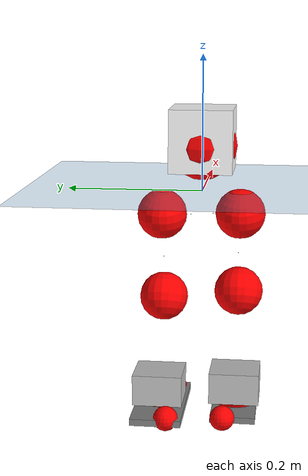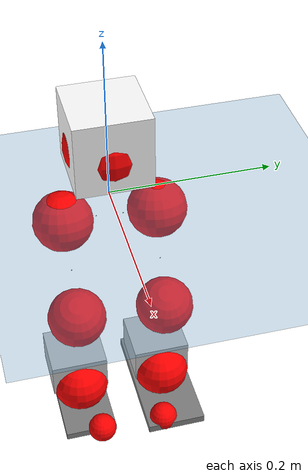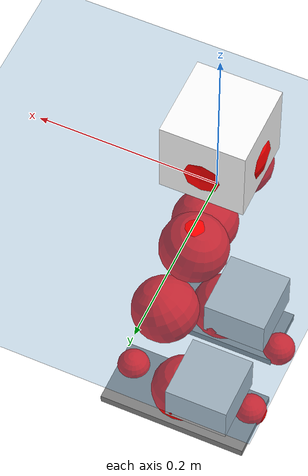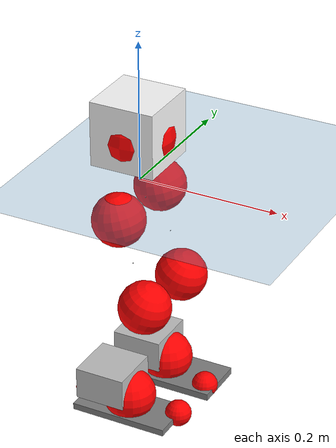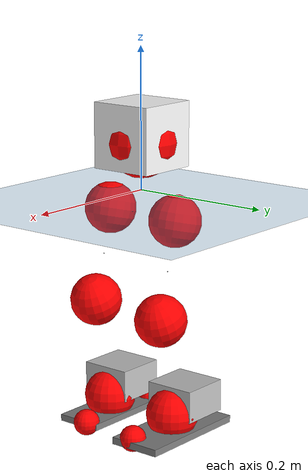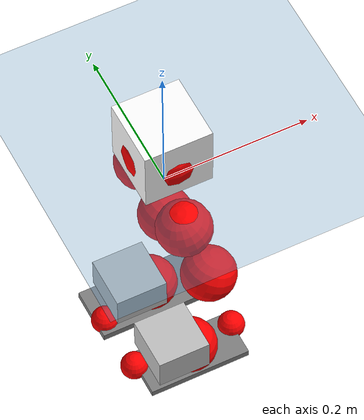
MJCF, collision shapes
<mujoco model="pi_12dof_release_v1">
  <compiler angle="radian" assetdir="assets" balanceinertia="true" inertiafromgeom="false"/>

  <option timestep="0.005" density="1.2" viscosity="2e-05"/>

  <size nkey="1"/>

  <visual>
    <quality shadowsize="8192"/>
    <map shadowclip="0.5"/>
  </visual>

  <default>
    <default class="/">
      <joint armature="0.01" damping="0.01" frictionloss="0.01"/>
      <geom contype="0" conaffinity="0" group="1" solref="-1000 -80"/>
      <site size="0.01 0.005 0.005" group="5"/>
      <general forcelimited="true" biastype="affine" gainprm="20" biasprm="0 -20 -0.5"/>
      <default class="foot">
        <geom size="0.0845 0.036 0.005" type="box" condim="6" group="4" priority="1" friction="0.9 0.2 0.2" solimp="0.015 1 0.005"/>
      </default>
      <default class="reward_collision_sphere">
        <geom group="5" rgba="1 0 0 1"/>
      </default>
    </default>
  </default>

  <asset>
    <texture type="skybox" colorspace="auto" name="//unnamed_texture_0" builtin="gradient" rgb1="0.95 0.95 0.95" rgb2="0.95 0.95 0.95" width="100" height="600"/>
    <texture type="2d" colorspace="auto" name="texplane" builtin="checker" rgb1="0.345 0.575 0.748" rgb2="0.345 0.575 0.748" markrgb="1 1 1" width="512" height="512"/>
    <material name="MatPlane" class="/" texture="texplane" texuniform="true" texrepeat="2 2" specular="0.9"/>
    <mesh name="baselink_1" class="/" file="baselink_1.STL"/>
    <mesh name="r_hip_pitch_link" class="/" file="r_hip_pitch_link.STL"/>
    <mesh name="r_hip_roll_link" class="/" file="r_hip_roll_link.STL"/>
    <mesh name="r_thigh_link" class="/" file="r_thigh_link.STL"/>
    <mesh name="r_calf_link" class="/" file="r_calf_link.STL"/>
    <mesh name="r_ankle_pitch_link" class="/" file="r_ankle_pitch_link.STL"/>
    <mesh name="r_ankle_roll_link" class="/" file="r_ankle_roll_link.STL"/>
    <mesh name="l_hip_pitch_link" class="/" file="l_hip_pitch_link.STL"/>
    <mesh name="l_hip_roll_link" class="/" file="l_hip_roll_link.STL"/>
    <mesh name="l_thigh_link" class="/" file="l_thigh_link.STL"/>
    <mesh name="l_calf_link" class="/" file="l_calf_link.STL"/>
    <mesh name="l_ankle_pitch_link" class="/" file="l_ankle_pitch_link.STL"/>
    <mesh name="l_ankle_roll_link" class="/" file="l_ankle_roll_link.STL"/>
  </asset>

  <worldbody>
    <geom name="floor" class="/" size="100 100 0.125" type="plane" group="0" material="MatPlane"/>
    <light name="toplight_shadow" class="/" pos="0 0 5" dir="0.0990148 0.0990148 -0.990148" type="directional" ambient="0.04 0.04 0.04" diffuse="0.55 0.55 0.55" specular="0.12 0.12 0.12"/>
    <light name="toplight_fill" class="/" pos="0 0 5" dir="0.0990148 0.0990148 -0.990148" type="directional" castshadow="false" ambient="0.04 0.04 0.04" diffuse="0.3 0.3 0.3" specular="0.08 0.08 0.08"/>
    <body name="trunk" pos="-0.00176556 -0.00052887 -0.00036757" quat="1 0.000382925 -0.000276356 0.000422345">
      <inertial pos="0.00188504 -0.00038583 0.0397922" quat="0.703337 0.00838872 0.0109519 0.710722" mass="1.67635" diaginertia="0.0125907 0.00195028 0.00381658"/>
      <joint name="//unnamed_joint_0" type="free"/>
      <geom name="//unnamed_geom_1" class="/" type="mesh" density="0" rgba="1 1 1 1" mesh="baselink_1"/>
      <geom name="//unnamed_geom_2" class="/" size="0.0460532 0.0460532 0.0460532" pos="0 0 0.0783364" type="box" rgba="1 1 1 1"/>
      <geom name="//unnamed_geom_3" class="reward_collision_sphere" size="0.0506585" pos="0 0 0.0685443"/>
      <site name="imu" class="/" pos="0.00362793 -0.0130556 0.00329814" size="0.00921063"/>
      <camera name="track" class="/" pos="0 -1.47257 0" quat="0.707107 0.707107 0 0" mode="trackcom"/>
      <camera name="ego_camera" class="/" pos="0.0785775 0 0.176257" quat="-0.5 -0.5 0.5 0.5"/>
      <body name="r_hip_pitch_link" pos="0.000607251 -0.0160907 -0.0326296" quat="0.992252 -0.000445594 -0.124238 0.00114544">
        <inertial pos="0.00044906 -0.041588 0.000658726" quat="-0.0126053 0.71047 -0.0306471 0.702947" mass="0.29845" diaginertia="0.000141702 2.18419e-05 7.7691e-05"/>
        <joint name="r_hip_pitch_joint" class="/" pos="0 0 0" axis="-0.00403205 -0.99998 -0.00483744" range="-1.73992 1.25236" armature="0.00894227" damping="0.00537845" frictionloss="0.00874224"/>
        <geom name="//unnamed_geom_4" class="/" type="mesh" density="0" rgba="0.75294 0.75294 0.75294 1" mesh="r_hip_pitch_link"/>
        <geom name="//unnamed_geom_5" class="/" size="0.000460532 0.000460532 0.000460532" type="box" rgba="0.75294 0.75294 0.75294 1"/>
        <body name="r_hip_roll_link" pos="0.000401697 -0.0405726 0.000345179" quat="1 -9.28871e-05 1.76889e-05 -7.7749e-05">
          <inertial pos="-0.00112652 -0.0028484 -0.0625419" quat="0.70795 -0.0819133 -0.0795607 0.69697" mass="0.308767" diaginertia="0.000420524 6.00887e-05 0.000115061"/>
          <joint name="r_hip_roll_joint" class="/" pos="0 0 0" axis="-0.999959 0.00144899 0.00895771" range="-0.12514 0.550405" armature="0.00881392" damping="0.0124729" frictionloss="0.00960107"/>
          <geom name="//unnamed_geom_6" class="/" type="mesh" density="0" rgba="0.75294 0.75294 0.75294 1" mesh="r_hip_roll_link"/>
          <geom name="//unnamed_geom_7" class="/" size="0.000460532 0.000460532 0.000460532" type="box" rgba="0.75294 0.75294 0.75294 1"/>
          <geom name="//unnamed_geom_8" class="reward_collision_sphere" size="0.0368425"/>
          <body name="r_thigh_link" pos="0.00229299 0.00310224 -0.0657257" quat="1 -0.000365949 0.000127868 -0.000148846">
            <inertial pos="0.00124926 -0.000180758 -0.0450489" quat="0.737304 0.675561 0.000153448 -0.000124201" mass="0.0912335" diaginertia="0.000161412 2.08128e-05 5.23546e-05"/>
            <joint name="r_thigh_joint" class="/" pos="0 0 0" axis="-0.00691518 -0.00622711 -0.999957" stiffness="0.00785834" range="-0.321416 0.585451" armature="0.00877352" damping="0" frictionloss="0.00801245"/>
            <geom name="//unnamed_geom_9" class="/" type="mesh" density="0" rgba="0.75294 0.75294 0.75294 1" mesh="r_thigh_link"/>
            <geom name="//unnamed_geom_10" class="/" size="0.000460532 0.000460532 0.000460532" type="box" rgba="0.75294 0.75294 0.75294 1"/>
            <body name="r_calf_link" pos="0.00106204 -0.000210086 -0.0662308" quat="0.947645 1.56524e-07 0.319326 1.78527e-05">
              <inertial pos="0.000677735 -0.00208108 -0.0685885" quat="0.999957 -0.000716655 -0.00661659 -0.0064135" mass="0.657615" diaginertia="0.00456517 0.000779591 0.000160603"/>
              <joint name="r_calf_joint" class="/" pos="0 0 0" axis="-0.00573977 -0.999965 0.00614085" range="-1.59812 0.647731" armature="0.00816362" damping="0.00726059" frictionloss="0.00904986"/>
              <geom name="//unnamed_geom_11" class="/" type="mesh" density="0" rgba="0.75294 0.75294 0.75294 1" mesh="r_calf_link"/>
              <geom name="//unnamed_geom_12" class="/" size="0.000460532 0.000460532 0.000460532" type="box" rgba="0.75294 0.75294 0.75294 1"/>
              <geom name="//unnamed_geom_13" class="reward_collision_sphere" size="0.0368425"/>
              <body name="r_ankle_pitch_link" pos="0.00122863 0.00114756 -0.138754" quat="0.980096 0.000385574 -0.198525 -0.00010285">
                <inertial pos="0.00534169 0.00270468 -0.00288394" quat="0.000209678 0.70773 -0.0149084 0.706326" mass="0.140407" diaginertia="0.000398749 4.96328e-05 0.000111578"/>
                <joint name="r_ankle_pitch_joint" class="/" pos="0 0 0" axis="0.00270075 -0.999993 0.00267965" range="-1.30188 0.554041" armature="0.00919016" damping="0.00760031" frictionloss="0.0103618"/>
                <geom name="//unnamed_geom_14" class="/" type="mesh" density="0" rgba="0.75294 0.75294 0.75294 1" mesh="r_ankle_pitch_link"/>
                <geom name="//unnamed_geom_15" class="/" size="0.0359215 0.0368425 0.0230266" type="box" rgba="0.75294 0.75294 0.75294 1"/>
                <body name="r_ankle_roll_link" pos="0.0788694 0.000964754 -0.00115675" quat="1 0.000331687 9.26946e-05 -0.00010122">
                  <inertial pos="-0.0255347 0.000790425 -0.0116519" quat="0.559895 0.428012 0.435536 0.560028" mass="0.382002" diaginertia="0.00137729 0.000223115 0.000238787"/>
                  <joint name="r_ankle_roll_joint" class="/" pos="0 0 0" axis="-0.999903 0.0122993 -0.00648985" range="-0.122562 0.1009" armature="0.00797168" damping="0.0194502" frictionloss="0.00888451"/>
                  <geom name="//unnamed_geom_16" class="/" type="mesh" density="0" rgba="0.75294 0.75294 0.75294 1" mesh="r_ankle_roll_link"/>
                  <geom name="//unnamed_geom_17" class="/" type="mesh" rgba="0.75294 0.75294 0.75294 1" mesh="r_ankle_roll_link"/>
                  <geom name="right_foot" class="foot" size="0.0702095 0.0333193 0.00468113" pos="-0.0534327 0 -0.043085"/>
                  <geom name="//unnamed_geom_19" class="reward_collision_sphere" size="0.0368425" pos="-0.052385 0 -0.0195841"/>
                  <geom name="//unnamed_geom_20" class="reward_collision_sphere" size="0.0184213" pos="0.0157155 0.0147257 -0.0391682"/>
                  <geom name="//unnamed_geom_21" class="reward_collision_sphere" size="0.0184213" pos="-0.125724 0.0147257 -0.0391682"/>
                  <site name="right_foot" class="foot" pos="-0.0534327 0 -0.043085" size="0.00921063"/>
                </body>
              </body>
            </body>
          </body>
        </body>
      </body>
      <body name="l_hip_pitch_link" pos="0.000721602 0.0170327 -0.0347048" quat="0.992204 1.76071e-06 -0.124628 2.1168e-06">
        <inertial pos="0.000741516 0.0396682 -0.00275491" quat="-0.0401466 0.705116 0.0308296 0.707283" mass="0.315507" diaginertia="0.000167601 2.23888e-05 9.12939e-05"/>
        <joint name="l_hip_pitch_joint" class="/" pos="0 0 0" axis="-0.000102651 1 -0.000802178" range="-1.2078 1.75836" armature="0.0101764" damping="0.0101977" frictionloss="0.00949765"/>
        <geom name="//unnamed_geom_22" class="/" type="mesh" density="0" rgba="0.75294 0.75294 0.75294 1" mesh="l_hip_pitch_link"/>
        <geom name="//unnamed_geom_23" class="/" size="0.000460532 0.000460532 0.000460532" type="box" rgba="0.75294 0.75294 0.75294 1"/>
        <body name="l_hip_roll_link" pos="-0.000387489 0.042379 -0.000428299" quat="1 6.05317e-05 0.000331778 0.00035651">
          <inertial pos="-0.00398691 -0.00136592 -0.062311" quat="0.700183 -0.0785584 -0.0901391 0.70388" mass="0.305785" diaginertia="0.000405163 6.01966e-05 0.000111498"/>
          <joint name="l_hip_roll_joint" class="/" pos="0 0 0" axis="-0.999999 0.000476354 0.00154435" range="-0.553643 0.15986" armature="0.00899946" damping="0" frictionloss="0.00922451"/>
          <geom name="//unnamed_geom_24" class="/" type="mesh" density="0" rgba="0.75294 0.75294 0.75294 1" mesh="l_hip_roll_link"/>
          <geom name="//unnamed_geom_25" class="/" size="0.000460532 0.000460532 0.000460532" type="box" rgba="0.75294 0.75294 0.75294 1"/>
          <geom name="//unnamed_geom_26" class="reward_collision_sphere" size="0.0368425"/>
          <body name="l_thigh_link" pos="-0.00169431 -0.000585999 -0.069992" quat="1 -0.000117569 8.18487e-05 0.000113948">
            <inertial pos="0.0010752 -0.00267762 -0.0450541" quat="0.678001 0.734985 0.0059618 -0.00872898" mass="0.0855745" diaginertia="0.000157294 2.03001e-05 5.24165e-05"/>
            <joint name="l_thigh_joint" class="/" pos="0 0 0" axis="-0.000520112 -0.000514945 -1" range="-0.604537 0.286978" armature="0.0090152" damping="0.00163425" frictionloss="0.0093534"/>
            <geom name="//unnamed_geom_27" class="/" type="mesh" density="0" rgba="0.75294 0.75294 0.75294 1" mesh="l_thigh_link"/>
            <geom name="//unnamed_geom_28" class="/" size="0.000460532 0.000460532 0.000460532" type="box" rgba="0.75294 0.75294 0.75294 1"/>
            <body name="l_calf_link" pos="-0.000767519 0.00132253 -0.0684322" quat="0.947586 -0.000309527 0.3195 -8.96935e-06">
              <inertial pos="0.000184674 0.00459982 -0.0706513" quat="0.999985 0.00309813 -0.000464789 0.00455974" mass="0.613647" diaginertia="0.00433878 0.00074058 0.000151881"/>
              <joint name="l_calf_joint" class="/" pos="0 0 0" axis="-2.36552e-06 0.999999 0.00131455" stiffness="0.00200092" range="-0.596794 1.70513" armature="0.00926265" damping="0.00783781" frictionloss="0.00884626"/>
              <geom name="//unnamed_geom_29" class="/" type="mesh" density="0" rgba="0.75294 0.75294 0.75294 1" mesh="l_calf_link"/>
              <geom name="//unnamed_geom_30" class="/" size="0.000460532 0.000460532 0.000460532" type="box" rgba="0.75294 0.75294 0.75294 1"/>
              <geom name="//unnamed_geom_31" class="reward_collision_sphere" size="0.0368425"/>
              <body name="l_ankle_pitch_link" pos="-0.000630856 0.000822279 -0.134654" quat="0.980068 -0.000143261 -0.198663 9.20501e-05">
                <inertial pos="0.00383943 0.000975493 -0.000276793" quat="-0.00202193 0.706362 0.00184908 0.707846" mass="0.129627" diaginertia="0.000377095 4.65644e-05 0.000107693"/>
                <joint name="l_ankle_pitch_joint" class="/" pos="0 0 0" axis="-0.00191851 0.999998 -0.000360191" range="-0.55784 1.31477" armature="0.0082602" damping="0.0121211" frictionloss="0.00873036"/>
                <geom name="//unnamed_geom_32" class="/" type="mesh" density="0" rgba="0.75294 0.75294 0.75294 1" mesh="l_ankle_pitch_link"/>
                <geom name="//unnamed_geom_33" class="/" size="0.0359215 0.0368425 0.0230266" type="box" rgba="0.75294 0.75294 0.75294 1"/>
                <body name="l_ankle_roll_link" pos="0.0816338 0.000372662 0.00103618" quat="1 0.000510788 -0.000106982 -1.10247e-05">
                  <inertial pos="-0.026153 -0.000724652 -0.0138418" quat="0.559602 0.429876 0.436924 0.557808" mass="0.387839" diaginertia="0.00141972 0.000218443 0.000251682"/>
                  <joint name="l_ankle_roll_joint" class="/" pos="0 0 0" axis="-0.999988 -0.00246562 -0.00423582" range="-0.168835 0.151502" armature="0.0101249" damping="0.00433825" frictionloss="0.00925305"/>
                  <geom name="//unnamed_geom_34" class="/" type="mesh" density="0" rgba="0.75294 0.75294 0.75294 1" mesh="l_ankle_roll_link"/>
                  <geom name="//unnamed_geom_35" class="/" type="mesh" rgba="0.75294 0.75294 0.75294 1" mesh="l_ankle_roll_link"/>
                  <geom name="left_foot" class="foot" size="0.0850126 0.0379826 0.00502691" pos="-0.0534327 0 -0.043085"/>
                  <geom name="//unnamed_geom_37" class="reward_collision_sphere" size="0.0368425" pos="-0.052385 0 -0.0195841"/>
                  <geom name="//unnamed_geom_38" class="reward_collision_sphere" size="0.0184213" pos="0.0157155 -0.0147257 -0.0391682"/>
                  <geom name="//unnamed_geom_39" class="reward_collision_sphere" size="0.0184213" pos="-0.125724 -0.0147257 -0.0391682"/>
                  <site name="left_foot" class="foot" pos="-0.0534327 0 -0.043085" size="0.00921063"/>
                </body>
              </body>
            </body>
          </body>
        </body>
      </body>
    </body>
  </worldbody>

  <contact>
    <pair class="/" geom1="floor" geom2="right_foot" name="//unnamed_contact_1"/>
    <pair class="/" geom1="floor" geom2="left_foot" name="//unnamed_contact_0"/>
  </contact>

  <actuator>
    <general name="r_hip_pitch_joint" class="/" joint="r_hip_pitch_joint" forcerange="-19.2872 19.2872" gainprm="18.4871" biasprm="0 -18.4871 -0.46728"/>
    <general name="r_hip_roll_joint" class="/" joint="r_hip_roll_joint" forcerange="-17.5135 17.5135" gainprm="18.4871" biasprm="0 -18.4871 -0.46728"/>
    <general name="r_thigh_joint" class="/" joint="r_thigh_joint" forcerange="-19.7783 19.7783" gainprm="18.4871" biasprm="0 -18.4871 -0.46728"/>
    <general name="r_calf_joint" class="/" joint="r_calf_joint" forcerange="-19.9264 19.9264" gainprm="18.4871" biasprm="0 -18.4871 -0.46728"/>
    <general name="r_ankle_pitch_joint" class="/" joint="r_ankle_pitch_joint" forcerange="-18.8544 18.8544" gainprm="18.4871" biasprm="0 -18.4871 -0.46728"/>
    <general name="r_ankle_roll_joint" class="/" joint="r_ankle_roll_joint" forcerange="-19.7623 19.7623" gainprm="18.4871" biasprm="0 -18.4871 -0.46728"/>
    <general name="l_hip_pitch_joint" class="/" joint="l_hip_pitch_joint" forcerange="-18.6094 18.6094" gainprm="18.4871" biasprm="0 -18.4871 -0.46728"/>
    <general name="l_hip_roll_joint" class="/" joint="l_hip_roll_joint" forcerange="-21.1259 21.1259" gainprm="18.4871" biasprm="0 -18.4871 -0.46728"/>
    <general name="l_thigh_joint" class="/" joint="l_thigh_joint" forcerange="-17.4385 17.4385" gainprm="18.4871" biasprm="0 -18.4871 -0.46728"/>
    <general name="l_calf_joint" class="/" joint="l_calf_joint" forcerange="-19.3998 19.3998" gainprm="18.4871" biasprm="0 -18.4871 -0.46728"/>
    <general name="l_ankle_pitch_joint" class="/" joint="l_ankle_pitch_joint" forcerange="-20.0918 20.0918" gainprm="18.4871" biasprm="0 -18.4871 -0.46728"/>
    <general name="l_ankle_roll_joint" class="/" joint="l_ankle_roll_joint" forcerange="-21.1959 21.1959" gainprm="18.4871" biasprm="0 -18.4871 -0.46728"/>
  </actuator>

  <sensor>
    <gyro site="imu" name="imu_angular_velocity"/>
    <velocimeter site="imu" name="imu_linear_velocity"/>
    <framelinvel objtype="site" objname="left_foot" name="left_foot_global_linear_velocity"/>
    <framelinvel objtype="site" objname="right_foot" name="right_foot_global_linear_velocity"/>
  </sensor>

  <keyframe>
    <key name="home" qpos="0 0 0.291 1 0 0 0 0.4 0 0 -0.8 0.4 0 -0.4 0 0 0.8 -0.4 0"/>
  </keyframe>
</mujoco>
